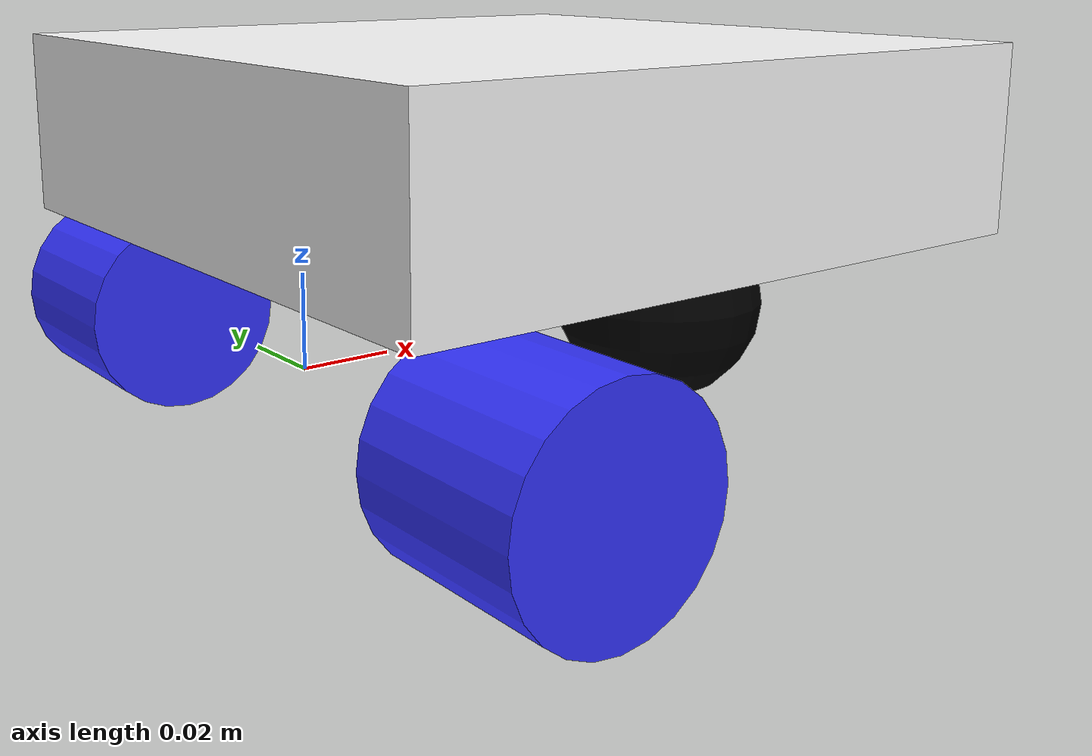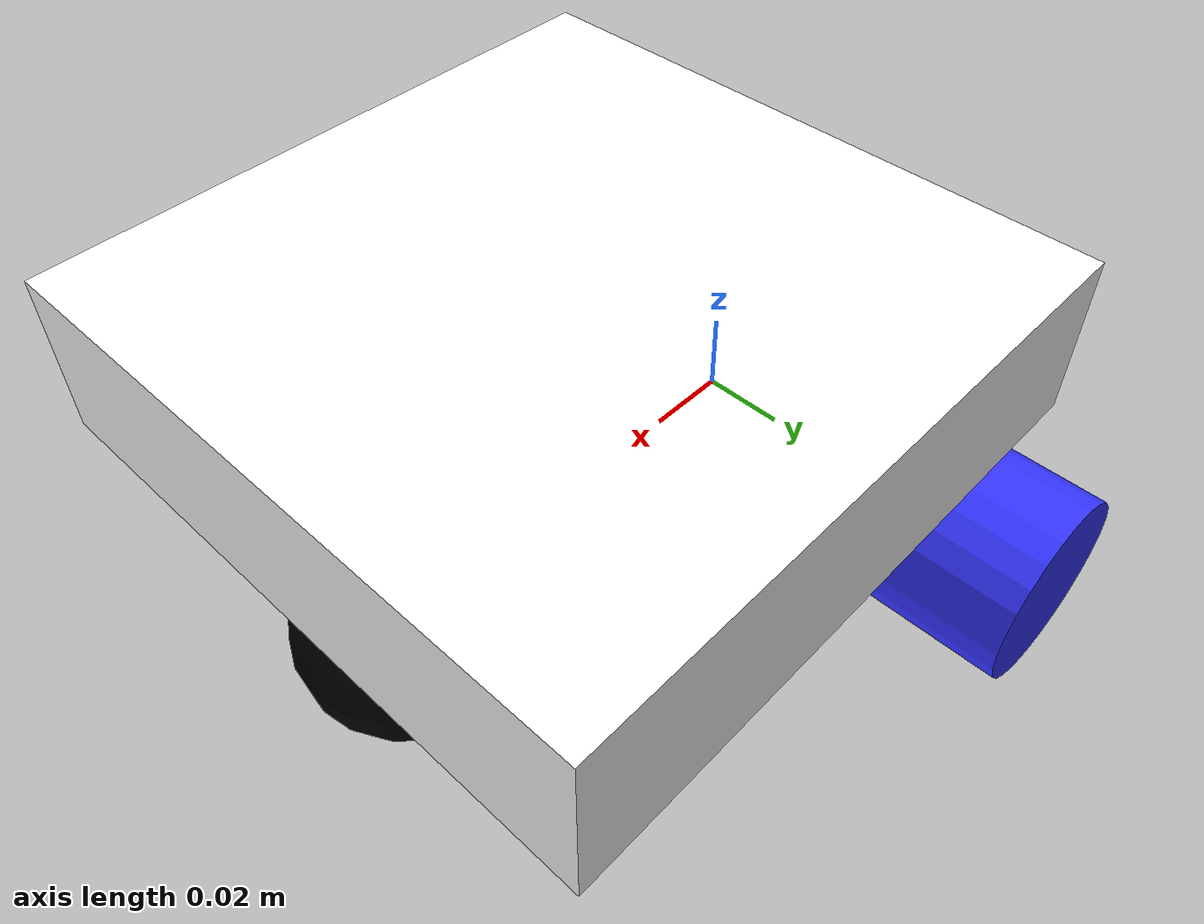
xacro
<?xml version="1.0"?>
<robot xmlns:xacro="http://www.ros.org/wiki/xacro" name ="robot">

    <xacro:include filename="inertial_macros.xacro"/>

    <material name="white">
        <color rgba="1 1 1 1" />
    </material>

    <material name="orange">
        <color rgba="1 0.3 0.1 1"/>
    </material>

    <material name="blue">
        <color rgba="0.2 0.2 1 1"/>
    </material>

    <material name="black">
        <color rgba="0 0 0 1"/>
    </material>

    <material name="red">
        <color rgba="1 0 0 1"/>
    </material>

    <!-- BASE LINK -->

    <link name="base_link">

    </link>

    <!-- CHASSIS LINK -->

    <joint name="chassis_joint" type="fixed">
        <parent link="base_link"/>
        <child link="chassis"/>
        <origin xyz="-0.1 0 0"/>
    </joint>

    <link name="chassis">
        <visual>
            <origin xyz="0.15 0 0.045"/>
            <geometry>
                <box size="0.15 0.15 0.04"/>
            </geometry>
            <material name="white"/>
        </visual>
        <collision>
            <origin xyz="0.15 0 0.045"/>
            <geometry>
                <box size="0.15 0.15 0.04"/>
            </geometry>
        </collision>
        <xacro:inertial_box mass="0.5" x="0.15" y="0.15" z="0.04">
            <origin xyz="0.15 0 0.045" rpy="0 0 0"/>
        </xacro:inertial_box>
    </link>

    <gazebo reference="chassis">
        <material>Gazebo/White</material>
    </gazebo>

    <!-- LEFT WHEEL LINK -->

    <joint name="left_wheel_joint" type="continuous">
        <parent link="base_link"/>
        <child link="left_wheel"/>
        <origin xyz="0 0.075 0" rpy="-${pi/2} 0 0" />
        <axis xyz="0 0 1"/>
    </joint>

    <link name="left_wheel">
        <visual>
            <geometry>
                <cylinder radius="0.0225" length="0.04"/>
            </geometry>
            <material name="blue"/>
        </visual>
        <collision>
            <geometry>
                <cylinder radius="0.0225" length="0.04"/>
            </geometry>
        </collision>
        <xacro:inertial_cylinder mass="0.1" length="0.04" radius="0.0225">
            <origin xyz="0 0 0" rpy="0 0 0"/>
        </xacro:inertial_cylinder>
    </link>

    <gazebo reference="left_wheel">
        <material>Gazebo/Blue</material>
    </gazebo>

    <!-- RIGHT WHEEL LINK -->

    <joint name="right_wheel_joint" type="continuous">
        <parent link="base_link"/>
        <child link="right_wheel"/>
        <origin xyz="0 -0.075 0" rpy="${pi/2} 0 0" />
        <axis xyz="0 0 -1"/>
    </joint>

    <link name="right_wheel">
        <visual>
            <geometry>
                <cylinder radius="0.0225" length="0.04"/>
            </geometry>
            <material name="blue"/>
        </visual>
        <collision>
            <geometry>
                <cylinder radius="0.0225" length="0.04"/>
            </geometry>
        </collision>
        <xacro:inertial_cylinder mass="0.1" length="0.04" radius="0.0225">
            <origin xyz="0 0 0" rpy="0 0 0"/>
        </xacro:inertial_cylinder>
    </link>

    <gazebo reference="right_wheel">
        <material>Gazebo/Blue</material>
    </gazebo>

    <!-- CASTER WHEEL LINK -->

    <joint name="caster_wheel_joint" type="fixed">
        <parent link="chassis"/>
        <child link="caster_wheel"/>
        <origin xyz="0.2 0 0"/>
    </joint>

    <link name="caster_wheel">
        <visual>
            <geometry>
                <sphere radius="0.025"/>
            </geometry>
            <material name="black"/>
        </visual>
        <collision>
            <geometry>
                <sphere radius="0.025"/>
            </geometry>
        </collision>
        <xacro:inertial_sphere mass="0.1" radius="0.025">
            <origin xyz="0.2 0 0" rpy="0 0 0"/>
        </xacro:inertial_sphere>
    </link>

    <gazebo reference="caster_wheel">
        <material>Gazebo/Black</material>
        <mu1 value="0.001"/>
        <mu2 value="0.001"/>
    </gazebo>

</robot>

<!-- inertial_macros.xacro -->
<robot xmlns:xacro="http://www.ros.org/wiki/xacro" >
    <xacro:macro name="inertial_sphere" params="mass radius *origin">
        <inertial>
            <xacro:insert_block name="origin"/>
            <mass value="${mass}" />
            <inertia ixx="${(2/5) * mass * (radius*radius)}" ixy="0.0" ixz="0.0"
                    iyy="${(2/5) * mass * (radius*radius)}" iyz="0.0"
                    izz="${(2/5) * mass * (radius*radius)}" />
        </inertial>
    </xacro:macro>

    <xacro:macro name="inertial_box" params="mass x y z *origin">
        <inertial>
            <xacro:insert_block name="origin"/>
            <mass value="${mass}" />
            <inertia ixx="${(1/12) * mass * (y*y+z*z)}" ixy="0.0" ixz="0.0"
                    iyy="${(1/12) * mass * (x*x+z*z)}" iyz="0.0"
                    izz="${(1/12) * mass * (x*x+y*y)}" />
        </inertial>
    </xacro:macro>

    <xacro:macro name="inertial_cylinder" params="mass length radius *origin">
        <inertial>
            <xacro:insert_block name="origin"/>
            <mass value="${mass}" />
            <inertia ixx="${(1/12) * mass * (3*radius*radius + length*length)}" ixy="0.0" ixz="0.0"
                    iyy="${(1/12) * mass * (3*radius*radius + length*length)}" iyz="0.0"
                    izz="${(1/2) * mass * (radius*radius)}" />
        </inertial>
    </xacro:macro>

</robot>
